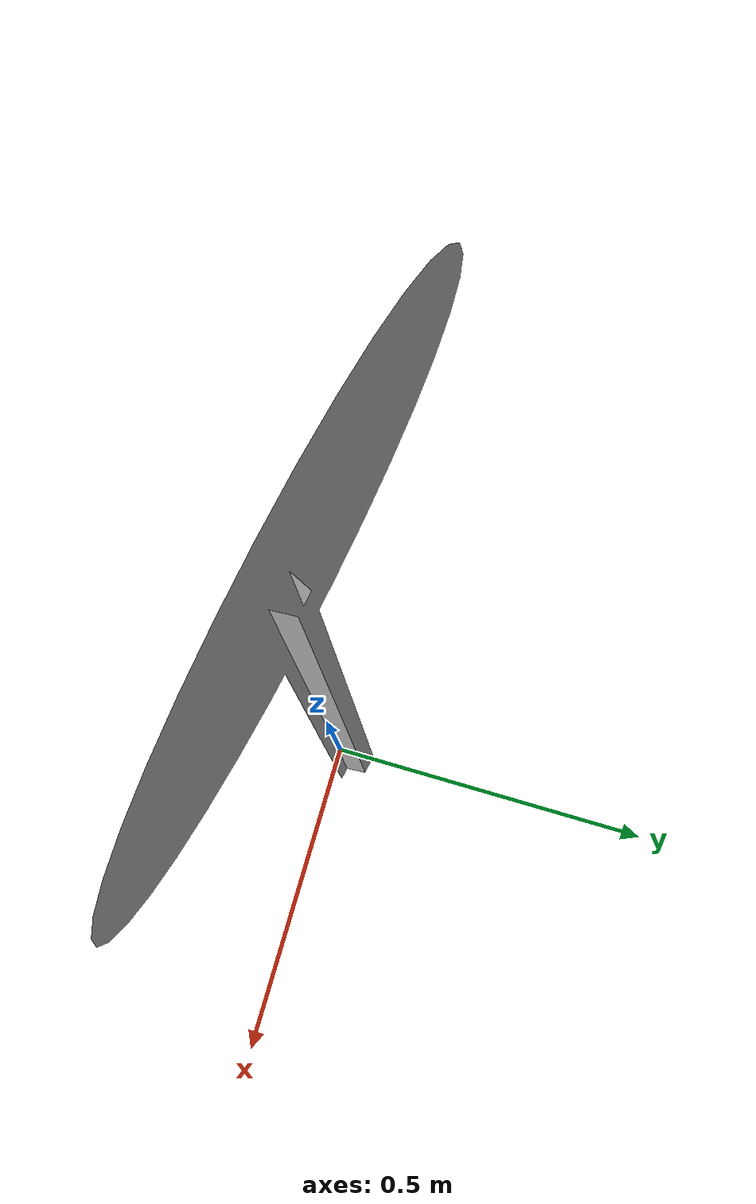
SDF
<?xml version='1.0'?>
<sdf version='1.7'>
  <model name='env_1'>
    <model name='Speed limit'>
      <static>1</static>
      <link name='link'>
        <collision name='collision'>
          <geometry>
            <mesh>
              <scale>10 10 10</scale>
              <uri>model://speed_limit_sign/meshes/speed_limit_sign.dae</uri>
            </mesh>
          </geometry>
        </collision>
        <visual name='visual'>
          <geometry>
            <mesh>
              <scale>10 10 10</scale>
              <uri>model://speed_limit_sign/meshes/speed_limit_sign.dae</uri>
            </mesh>
          </geometry>
        </visual>
      </link>
      <pose>4e-06 2.6e-05 0 0 -0 2.94749</pose>
    </model>
    <static>0</static>
    <allow_auto_disable>1</allow_auto_disable>
  </model>
</sdf>
